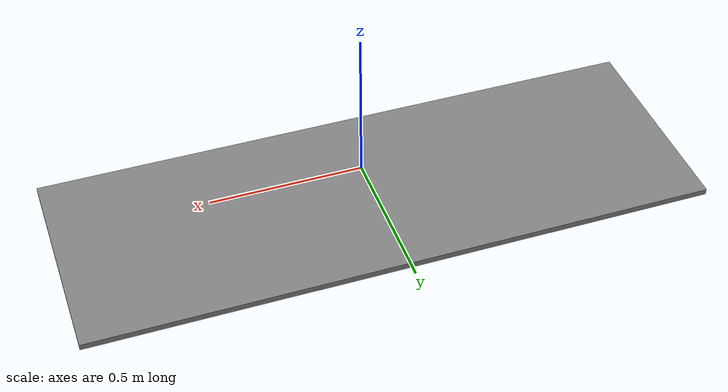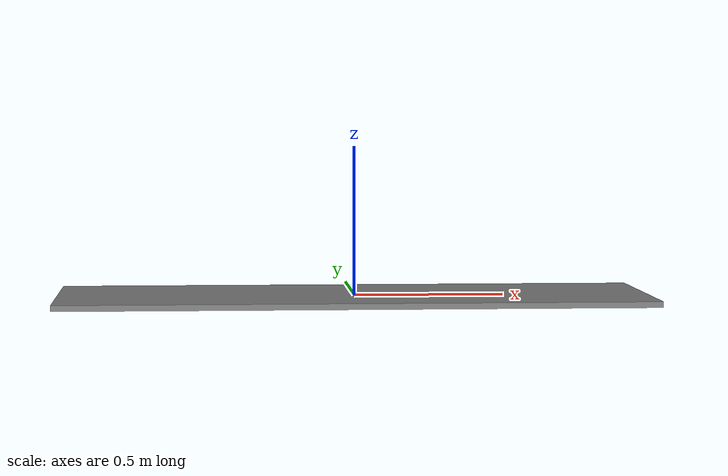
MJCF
<?xml version="1.0" encoding="utf-8"?>
<mujoco model="worm">

   <extension>
      <plugin plugin="mujoco.elasticity.cable"/>
   </extension>
   <size memory="1G"/>
   <statistic center="0 0 .2" extent="1"/>
   <compiler autolimits="true">
      <lengthrange tolrange="0.5"/>
   </compiler>
   <visual>
      <global elevation="-30" offheight="400" offwidth="900"/>
   </visual>
   <default>
      <geom solimp=".95 .99 .0001" solref="0.01 1" friction="0.5"/>
      <site size="0.002"/>
      <tendon limited="false" rgba=".95 .3 .3 1" width="0.001"/>
      <default class="muscle">
         <muscle ctrllimited="true" ctrlrange="0 1"/>
      </default>
   </default>
   <option integrator="RK4" iterations="500" solver="PGS" timestep="0.001"
           tolerance="1e-6"/>

   <worldbody>
      <camera name="fixed" pos="-0.3 -1.7 0.2" xyaxes="1 0 0 0 0 1"/>
      <light castshadow="false" diffuse=".4 .4 .4" dir="0 0 -1" pos="0 0 2.0"
             specular="0.1 0.1 0.1"/>
      <light diffuse=".8 .8 .8" dir="0 0 -1" directional="true" pos="0 0 4"
             specular="0.2 0.2 0.2"/>

      <body name="platform" pos="0 0.1 -0.015">
         <joint name="angler" type="hinge" axis="0 1 0" limited="true" range="-30 30"/>
         <geom type="box" size="1 0.35 0.01"/>
    </body>
   </worldbody>

   <asset>
      <texture builtin="gradient" height="512" rgb1="1 1 1" rgb2="1 1 1" type="skybox"
               width="512"/>
      <texture builtin="checker" height="512" mark="cross" markrgb="1 1 1" name="texplane"
               rgb1="1 1 1"
               rgb2="1 1 1"
               type="2d"
               width="512"/>
      <material name="MatPlane" reflectance="0" texrepeat="10 10" texture="texplane"
                texuniform="true"/>
   </asset>

   <actuator>
      <position name="plat_motor" joint="angler" kp="10000"/>
      <velocity name="plat_motor_vel" joint="angler" kv="10000"/>
   </actuator>
</mujoco>
